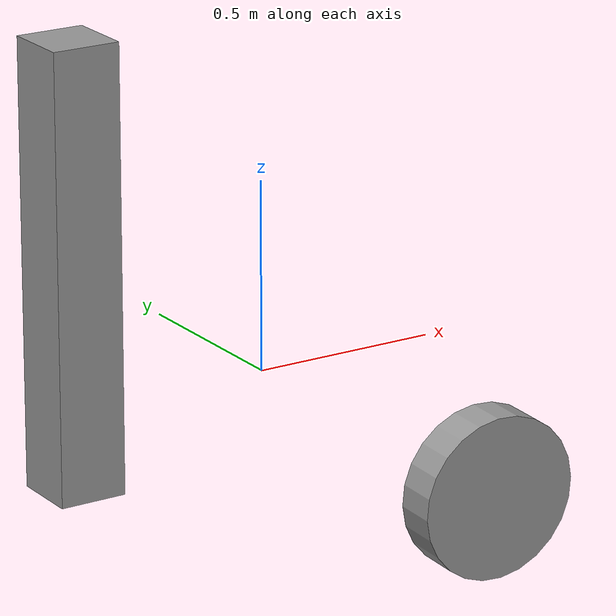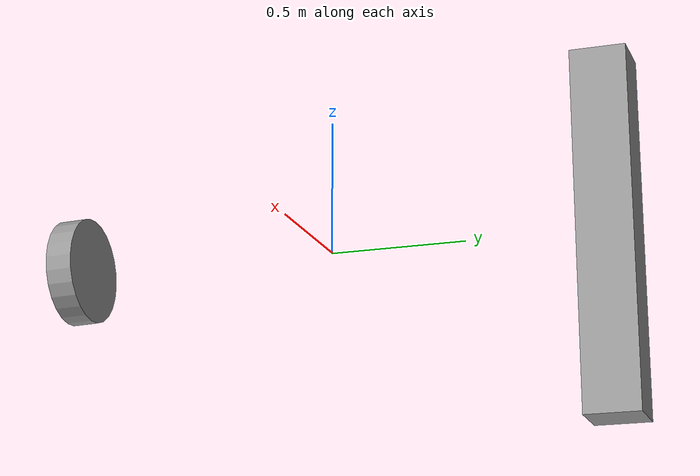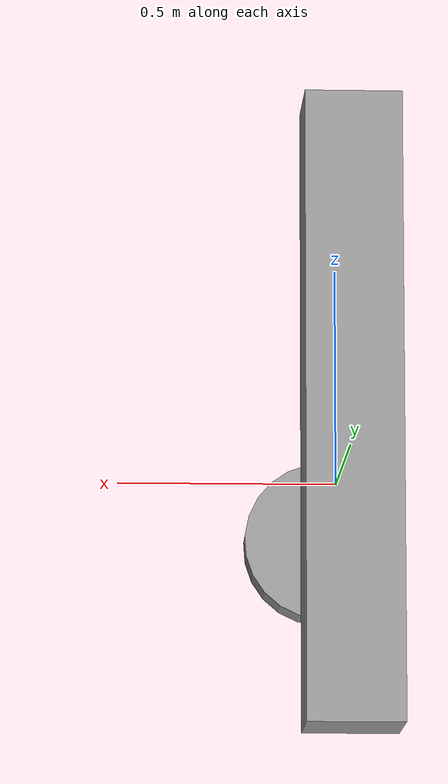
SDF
<?xml version='1.0'?>
<sdf version='1.6'>
  <model name='cyc'>
    <link name='link_0'>
      <inertial>
        <mass>3.98</mass>
        <inertia>
          <ixx>0.573783</ixx>
          <ixy>0</ixy>
          <ixz>0</ixz>
          <iyy>0.573783</iyy>
          <iyz>0</iyz>
          <izz>0.0265333</izz>
        </inertia>
        <pose frame=''>0 0 0 0 -0 0</pose>
      </inertial>
      <pose frame=''>0.033084 1.02117 -0.03 0 -0 0</pose>
      <gravity>1</gravity>
      <self_collide>0</self_collide>
      <kinematic>0</kinematic>
      <enable_wind>0</enable_wind>
      <visual name='visual'>
        <pose frame=''>0 0 0 0 -0 0</pose>
        <geometry>
          <box>
            <size>0.2 0.2 1.3</size>
          </box>
        </geometry>
        <material>
          <lighting>1</lighting>
          <script>
            <uri>file://media/materials/scripts/gazebo.material</uri>
            <name>Gazebo/Grey</name>
          </script>
          <shader type='vertex'>
            <normal_map>__default__</normal_map>
          </shader>
          <ambient>0.3 0.3 0.3 1</ambient>
          <diffuse>0.7 0.7 0.7 1</diffuse>
          <specular>0.01 0.01 0.01 1</specular>
          <emissive>0 0 0 1</emissive>
        </material>
        <transparency>0</transparency>
        <cast_shadows>1</cast_shadows>
      </visual>
      <collision name='collision'>
        <laser_retro>0</laser_retro>
        <max_contacts>10</max_contacts>
        <pose frame=''>0 0 0 0 -0 0</pose>
        <geometry>
          <box>
            <size>0.04 0.04 1.69</size>
          </box>
        </geometry>
        <surface>
          <friction>
            <ode>
              <mu>1</mu>
              <mu2>1</mu2>
              <fdir1>0 0 0</fdir1>
              <slip1>0</slip1>
              <slip2>0</slip2>
            </ode>
            <torsional>
              <coefficient>1</coefficient>
              <patch_radius>0</patch_radius>
              <surface_radius>0</surface_radius>
              <use_patch_radius>1</use_patch_radius>
              <ode>
                <slip>0</slip>
              </ode>
            </torsional>
          </friction>
          <bounce>
            <restitution_coefficient>0</restitution_coefficient>
            <threshold>1e+06</threshold>
          </bounce>
          <contact>
            <collide_without_contact>0</collide_without_contact>
            <collide_without_contact_bitmask>1</collide_without_contact_bitmask>
            <collide_bitmask>1</collide_bitmask>
            <ode>
              <soft_cfm>0</soft_cfm>
              <soft_erp>0.2</soft_erp>
              <kp>1e+13</kp>
              <kd>1</kd>
              <max_vel>0.01</max_vel>
              <min_depth>0</min_depth>
            </ode>
            <bullet>
              <split_impulse>1</split_impulse>
              <split_impulse_penetration_threshold>-0.01</split_impulse_penetration_threshold>
              <soft_cfm>0</soft_cfm>
              <soft_erp>0.2</soft_erp>
              <kp>1e+13</kp>
              <kd>1</kd>
            </bullet>
          </contact>
        </surface>
      </collision>
    </link>
    <link name='link_1'>
      <inertial>
        <mass>3.98</mass>
        <inertia>
          <ixx>0.0419227</ixx>
          <ixy>0</ixy>
          <ixz>0</ixz>
          <iyy>0.0419227</iyy>
          <iyz>0</iyz>
          <izz>0.0796</izz>
        </inertia>
        <pose frame=''>0 0 0 0 -0 0</pose>
      </inertial>
      <pose frame=''>-0.033084 -1.02117 0.03 1.6 0.2 0</pose>
      <gravity>1</gravity>
      <self_collide>0</self_collide>
      <kinematic>0</kinematic>
      <enable_wind>0</enable_wind>
      <visual name='visual'>
        <pose frame=''>0 0 0 0 -0 0</pose>
        <geometry>
          <cylinder>
            <radius>0.2</radius>
            <length>0.1</length>
          </cylinder>
        </geometry>
        <material>
          <lighting>1</lighting>
          <script>
            <uri>file://media/materials/scripts/gazebo.material</uri>
            <name>Gazebo/Grey</name>
          </script>
          <shader type='vertex'>
            <normal_map>__default__</normal_map>
          </shader>
          <ambient>0.3 0.3 0.3 1</ambient>
          <diffuse>0.7 0.7 0.7 1</diffuse>
          <specular>0.01 0.01 0.01 1</specular>
          <emissive>0 0 0 1</emissive>
        </material>
        <transparency>0</transparency>
        <cast_shadows>1</cast_shadows>
      </visual>
      <collision name='collision'>
        <laser_retro>0</laser_retro>
        <max_contacts>10</max_contacts>
        <pose frame=''>0 0 0.01 0 -0 0</pose>
        <geometry>
          <cylinder>
            <radius>0.08</radius>
            <length>0.0064</length>
          </cylinder>
        </geometry>
        <surface>
          <friction>
            <ode>
              <mu>1</mu>
              <mu2>1</mu2>
              <fdir1>0 0 0</fdir1>
              <slip1>0</slip1>
              <slip2>0</slip2>
            </ode>
            <torsional>
              <coefficient>1</coefficient>
              <patch_radius>0</patch_radius>
              <surface_radius>0</surface_radius>
              <use_patch_radius>1</use_patch_radius>
              <ode>
                <slip>0</slip>
              </ode>
            </torsional>
          </friction>
          <bounce>
            <restitution_coefficient>0</restitution_coefficient>
            <threshold>1e+06</threshold>
          </bounce>
          <contact>
            <collide_without_contact>0</collide_without_contact>
            <collide_without_contact_bitmask>1</collide_without_contact_bitmask>
            <collide_bitmask>1</collide_bitmask>
            <ode>
              <soft_cfm>0</soft_cfm>
              <soft_erp>0.2</soft_erp>
              <kp>1e+13</kp>
              <kd>1</kd>
              <max_vel>0.01</max_vel>
              <min_depth>0</min_depth>
            </ode>
            <bullet>
              <split_impulse>1</split_impulse>
              <split_impulse_penetration_threshold>-0.01</split_impulse_penetration_threshold>
              <soft_cfm>0</soft_cfm>
              <soft_erp>0.2</soft_erp>
              <kp>1e+13</kp>
              <kd>1</kd>
            </bullet>
          </contact>
        </surface>
      </collision>
    </link>
    <joint name='link_1_JOINT_0' type='revolute'>
      <parent>link_1</parent>
      <child>link_0</child>
      <pose frame=''>0 0 0 0 -0 0</pose>
      <axis>
        <xyz>1 0 0</xyz>
        <use_parent_model_frame>0</use_parent_model_frame>
        <limit>
          <lower>-1.79769e+308</lower>
          <upper>1.79769e+308</upper>
          <effort>-1</effort>
          <velocity>-1</velocity>
        </limit>
        <dynamics>
          <spring_reference>0</spring_reference>
          <spring_stiffness>0</spring_stiffness>
          <damping>0</damping>
        </dynamics>
      </axis>
      <physics>
        <ode>
          <limit>
            <cfm>0</cfm>
            <erp>0.2</erp>
          </limit>
          <suspension>
            <cfm>0</cfm>
            <erp>0.2</erp>
          </suspension>
        </ode>
      </physics>
    </joint>
    <static>0</static>
    <allow_auto_disable>1</allow_auto_disable>
  </model>
</sdf>
